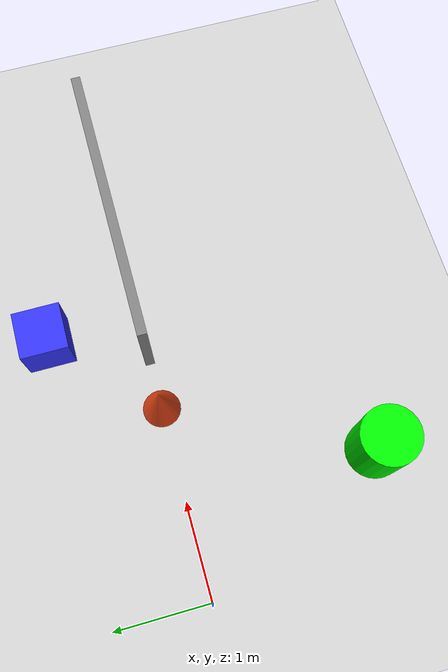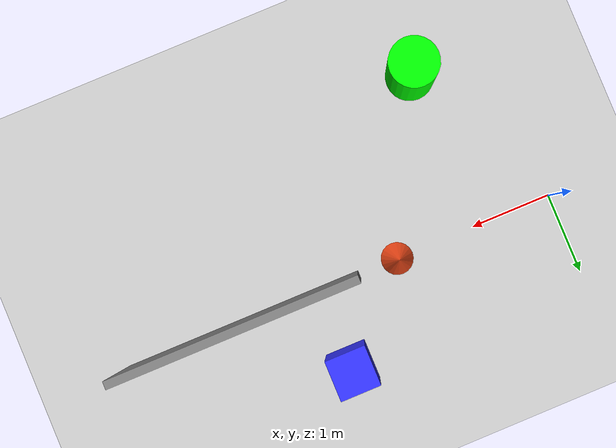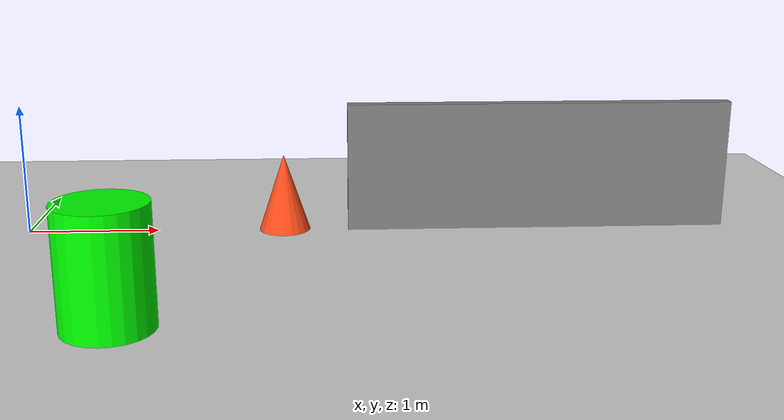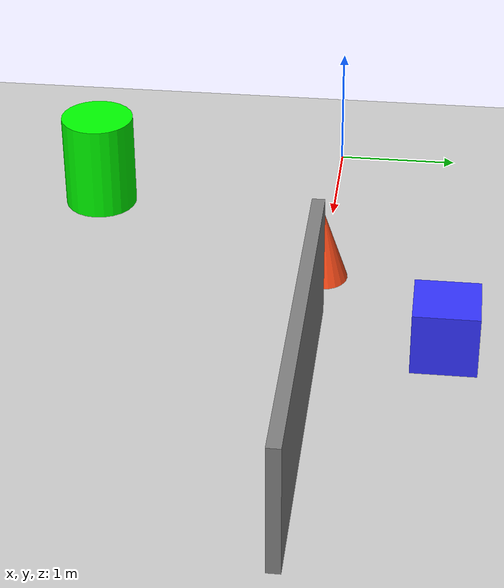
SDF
<?xml version="1.0" ?>
<sdf version="1.7">
  <world name="obstacle_world">

    <!-- Ground -->
    <include>
      <uri>https://fuel.gazebosim.org/1.0/openrobotics/models/Ground Plane</uri>
    </include>

    <!-- Sun -->
    <include>
      <uri>https://fuel.gazebosim.org/1.0/openrobotics/models/Sun</uri>
    </include>

    <!-- Cone Obstacle -->
    <model name="cone_obstacle">
      <static>true</static>
      <pose>2 0 0.3 0 0 0</pose>

      <link name="link">
        <visual name="visual">
          <geometry>
            <cone>
              <radius>0.2</radius>
              <length>0.6</length>
            </cone>
          </geometry>
          <material>
            <ambient>1 0.3 0.1 1</ambient>
          </material>
        </visual>

        <collision name="collision">
          <geometry>
            <cone>
              <radius>0.2</radius>
              <length>0.6</length>
            </cone>
          </geometry>
        </collision>
      </link>
    </model>

    <!-- Box Obstacle -->
    <model name="box_obstacle">
      <static>true</static>
      <pose>3 1 0.25 0 0 0</pose>

      <link name="link">
        <visual name="visual">
          <geometry>
            <box>
              <size>0.5 0.5 0.5</size>
            </box>
          </geometry>
          <material>
            <ambient>0.2 0.2 1 1</ambient>
          </material>
        </visual>

        <collision name="collision">
          <geometry>
            <box>
              <size>0.5 0.5 0.5</size>
            </box>
          </geometry>
        </collision>
      </link>
    </model>

    <!-- Cylinder Obstacle -->
    <model name="cylinder_obstacle">
      <static>true</static>
      <pose>1 -2 0.4 0 0 0</pose>

      <link name="link">
        <visual name="visual">
          <geometry>
            <cylinder>
              <radius>0.3</radius>
              <length>0.8</length>
            </cylinder>
          </geometry>
          <material>
            <ambient>0 1 0 1</ambient>
          </material>
        </visual>

        <collision name="collision">
          <geometry>
            <cylinder>
              <radius>0.3</radius>
              <length>0.8</length>
            </cylinder>
          </geometry>
        </collision>
      </link>
    </model>

    <!-- Wall -->
    <model name="wall">
      <static>true</static>
      <pose>4 0 0.5 0 0 0</pose>

      <link name="link">
        <visual name="visual">
          <geometry>
            <box>
              <size>3 0.1 1</size>
            </box>
          </geometry>
          <material>
            <ambient>0.5 0.5 0.5 1</ambient>
          </material>
        </visual>

        <collision name="collision">
          <geometry>
            <box>
              <size>3 0.1 1</size>
            </box>
          </geometry>
        </collision>
      </link>
    </model>

  </world>
</sdf>
